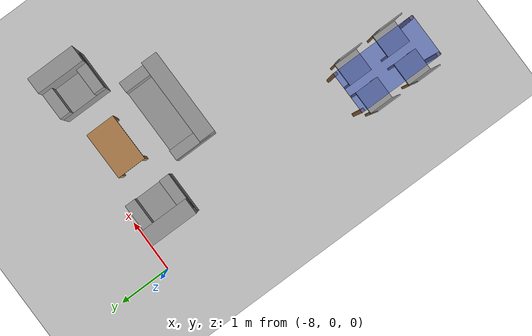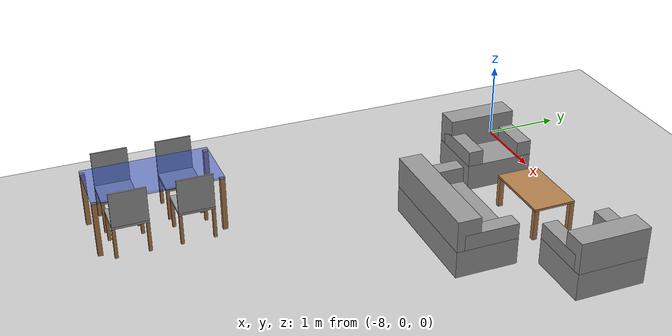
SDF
<sdf version="1.6">
 <world name="GrannyAnnie">
  <model name="ground_plane">
   <static>1</static>
   <link name="link">
    <collision name="collision">
     <geometry><plane><normal>0 0 1</normal><size>100 100</size></plane></geometry>
     <surface><friction><ode><mu>100</mu><mu2>100</mu2></ode></friction></surface>
    </collision>
    <visual name="visual">
     <cast_shadows>0</cast_shadows>
     <geometry><plane><normal>0 0 1</normal><size>100 100</size></plane></geometry>
     <material>
      <script><uri>file://media/materials/scripts/gazebo.material</uri><name>Gazebo/Grey</name></script>
     </material>
    </visual>
    <velocity_decay><linear>0</linear><angular>0</angular></velocity_decay>
   </link>
  </model>
  <model name="mesa_comedor">
   <link name="mesa_link">
    <inertial>
     <pose>0 0 0.513571 0 -0 0</pose>
     <mass>7</mass>
     <inertia>
      <ixx>1.28229</ixx>
      <ixy>0</ixy>
      <ixz>5.70179e-17</ixz>
      <iyy>3.10629</iyy>
      <iyz>0</iyz>
      <izz>3.4192</izz>
     </inertia>
    </inertial>
    <collision name="mesa_link_collision">
     <pose>0 0 0.725 0 -0 0</pose>
     <geometry><box><size>1.6 0.8 0.03</size></box></geometry>
     <surface><friction><ode><mu>100</mu><mu2>100</mu2></ode></friction></surface>
    </collision>
    <collision name="mesa_link_collision_pata_1_link">
     <pose>0.77 0.37 0.355 0 -0 0</pose>
     <geometry><box><size>0.06 0.06 0.71</size></box></geometry>
     <surface><friction><ode><mu>100</mu><mu2>100</mu2></ode></friction></surface>
     <surface><friction><ode><mu>100</mu><mu2>100</mu2></ode></friction></surface>
    </collision>
    <collision name="mesa_link_collision_pata_2_link">
     <pose>0.77 -0.37 0.355 0 -0 0</pose>
     <geometry><box><size>0.06 0.06 0.71</size></box></geometry>
     <surface><friction><ode><mu>100</mu><mu2>100</mu2></ode></friction></surface>
     <surface><friction><ode><mu>100</mu><mu2>100</mu2></ode></friction></surface>
    </collision>
    <collision name="mesa_link_collision_pata_3_link">
     <pose>-0.77 -0.37 0.355 0 -0 0</pose>
     <geometry><box><size>0.06 0.06 0.71</size></box></geometry>
     <surface><friction><ode><mu>100</mu><mu2>100</mu2></ode></friction></surface>
     <surface><friction><ode><mu>100</mu><mu2>100</mu2></ode></friction></surface>
    </collision>
    <collision name="mesa_link_collision_pata_4_link">
     <pose>-0.77 0.37 0.355 0 -0 0</pose>
     <geometry><box><size>0.06 0.06 0.71</size></box></geometry>
     <surface><friction><ode><mu>100</mu><mu2>100</mu2></ode></friction></surface>
     <surface><friction><ode><mu>100</mu><mu2>100</mu2></ode></friction></surface>
    </collision>
    <visual name="mesa_link_visual">
     <pose>0 0 0.725 0 -0 0</pose>
     <geometry><box><size>1.6 0.8 0.03</size></box></geometry>
     <material><script><name>Gazebo/BlueTransparent</name><uri>__default__</uri></script></material>
    </visual>
    <visual name="mesa_link_visual_pata_1_link">
     <pose>0.77 0.37 0.355 0 -0 0</pose>
     <geometry><box><size>0.06 0.06 0.71</size></box></geometry>
     <material><script><name>Gazebo/Wood</name><uri>__default__</uri></script></material>
    </visual>
    <visual name="mesa_link_visual_pata_2_link">
     <pose>0.77 -0.37 0.355 0 -0 0</pose>
     <geometry><box><size>0.06 0.06 0.71</size></box></geometry>
     <material><script><name>Gazebo/Wood</name><uri>__default__</uri></script></material>
    </visual>
    <visual name="mesa_link_visual_pata_3_link">
     <pose>-0.77 -0.37 0.355 0 -0 0</pose>
     <geometry><box><size>0.06 0.06 0.71</size></box></geometry>
     <material><script><name>Gazebo/Wood</name><uri>__default__</uri></script></material>
    </visual>
    <visual name="mesa_link_visual_pata_4_link">
     <pose>-0.77 0.37 0.355 0 -0 0</pose>
     <geometry><box><size>0.06 0.06 0.71</size></box></geometry>
     <material><script><name>Gazebo/Wood</name><uri>__default__</uri></script></material>
    </visual>
    <velocity_decay><linear>0</linear><angular>0</angular></velocity_decay>
    <velocity_decay><linear>0</linear><angular>0</angular></velocity_decay>
    <velocity_decay><linear>0</linear><angular>0</angular></velocity_decay>
    <velocity_decay><linear>0</linear><angular>0</angular></velocity_decay>
    <velocity_decay><linear>0</linear><angular>0</angular></velocity_decay>
    <self_collide>1</self_collide>
   </link>
   <pose>-7.4 -5 -0.00088 0 -0 1.57</pose>
   <static>0</static>
  </model>
  <model name="silla_1">
   <link name="silla_link">
    <inertial>
     <pose>0.0215 0 0.353 0 -0 0</pose>
     <mass>2</mass>
     <inertia>
      <ixx>0.674432</ixx>
      <ixy>0</ixy>
      <ixz>-0.012986</ixz>
      <iyy>0.682753</iyy>
      <iyz>0</iyz>
      <izz>0.675561</izz>
     </inertia>
    </inertial>
    <collision name="silla_link_collision">
     <pose>0 0 0.415 0 -0 0</pose>
     <geometry><box><size>0.45 0.45 0.03</size></box></geometry>
     <surface><friction><ode><mu>100</mu><mu2>100</mu2></ode></friction></surface>
    </collision>
    <collision name="silla_link_collision_pata_1_link">
     <pose>0.205 0.205 0.2 0 -0 0</pose>
     <geometry><box><size>0.04 0.04 0.4</size></box></geometry>
     <surface><friction><ode><mu>100</mu><mu2>100</mu2></ode></friction></surface>
     <surface><friction><ode><mu>100</mu><mu2>100</mu2></ode></friction></surface>
    </collision>
    <collision name="silla_link_collision_pata_2_link">
     <pose>0.205 -0.205 0.2 0 -0 0</pose>
     <geometry><box><size>0.04 0.04 0.4</size></box></geometry>
     <surface><friction><ode><mu>100</mu><mu2>100</mu2></ode></friction></surface>
     <surface><friction><ode><mu>100</mu><mu2>100</mu2></ode></friction></surface>
    </collision>
    <collision name="silla_link_collision_pata_3_link">
     <pose>-0.205 -0.205 0.2 0 -0 0</pose>
     <geometry><box><size>0.04 0.04 0.4</size></box></geometry>
     <surface><friction><ode><mu>100</mu><mu2>100</mu2></ode></friction></surface>
     <surface><friction><ode><mu>100</mu><mu2>100</mu2></ode></friction></surface>
    </collision>
    <collision name="silla_link_collision_pata_4_link">
     <pose>-0.205 0.205 0.2 0 -0 0</pose>
     <geometry><box><size>0.04 0.04 0.4</size></box></geometry>
     <surface><friction><ode><mu>100</mu><mu2>100</mu2></ode></friction></surface>
     <surface><friction><ode><mu>100</mu><mu2>100</mu2></ode></friction></surface>
    </collision>
    <collision name="silla_link_collision_respaldo_link">
     <pose>0.215 0 0.655 0 -0 0</pose>
     <geometry><box><size>0.02 0.45 0.45</size></box></geometry>
     <surface><friction><ode><mu>100</mu><mu2>100</mu2></ode></friction></surface>
     <surface><friction><ode><mu>100</mu><mu2>100</mu2></ode></friction></surface>
    </collision>
    <visual name="silla_link_visual">
     <pose>0 0 0.415 0 -0 0</pose>
     <geometry><box><size>0.45 0.45 0.03</size></box></geometry>
     <material><script><name>Gazebo/Grey</name><uri>__default__</uri></script></material>
    </visual>
    <visual name="silla_link_visual_pata_1_link">
     <pose>0.205 0.205 0.2 0 -0 0</pose>
     <geometry><box><size>0.04 0.04 0.4</size></box></geometry>
     <material><script><name>Gazebo/Wood</name><uri>__default__</uri></script></material>
    </visual>
    <visual name="silla_link_visual_pata_2_link">
     <pose>0.205 -0.205 0.2 0 -0 0</pose>
     <geometry><box><size>0.04 0.04 0.4</size></box></geometry>
     <material><script><name>Gazebo/Wood</name><uri>__default__</uri></script></material>
    </visual>
    <visual name="silla_link_visual_pata_3_link">
     <pose>-0.205 -0.205 0.2 0 -0 0</pose>
     <geometry><box><size>0.04 0.04 0.4</size></box></geometry>
     <material><script><name>Gazebo/Wood</name><uri>__default__</uri></script></material>
    </visual>
    <visual name="silla_link_visual_pata_4_link">
     <pose>-0.205 0.205 0.2 0 -0 0</pose>
     <geometry><box><size>0.04 0.04 0.4</size></box></geometry>
     <material><script><name>Gazebo/Wood</name><uri>__default__</uri></script></material>
    </visual>
    <visual name="silla_link_visual_respaldo_link">
     <pose>0.215 0 0.655 0 -0 0</pose>
     <geometry><box><size>0.02 0.45 0.45</size></box></geometry>
     <material><script><name>Gazebo/Grey</name><uri>__default__</uri></script></material>
    </visual>
    <velocity_decay><linear>0</linear><angular>0</angular></velocity_decay>
    <velocity_decay><linear>0</linear><angular>0</angular></velocity_decay>
    <velocity_decay><linear>0</linear><angular>0</angular></velocity_decay>
    <velocity_decay><linear>0</linear><angular>0</angular></velocity_decay>
    <velocity_decay><linear>0</linear><angular>0</angular></velocity_decay>
    <velocity_decay><linear>0</linear><angular>0</angular></velocity_decay>
    <self_collide>1</self_collide>
   </link>
   <pose>-7.09936 -5.39899 1e-05 -4.4e-05 -1e-06 -0.002131</pose>
   <static>0</static>
  </model>
  <model name="silla_2">
   <link name="silla_link">
    <inertial>
     <pose>0.0215 0 0.353 0 -0 0</pose>
     <mass>2</mass>
     <inertia>
      <ixx>0.674432</ixx>
      <ixy>0</ixy>
      <ixz>-0.012986</ixz>
      <iyy>0.682753</iyy>
      <iyz>0</iyz>
      <izz>0.675561</izz>
     </inertia>
    </inertial>
    <collision name="silla_link_collision">
     <pose>0 0 0.415 0 -0 0</pose>
     <geometry><box><size>0.45 0.45 0.03</size></box></geometry>
     <surface><friction><ode><mu>100</mu><mu2>100</mu2></ode></friction></surface>
    </collision>
    <collision name="silla_link_collision_pata_1_link">
     <pose>0.205 0.205 0.2 0 -0 0</pose>
     <geometry><box><size>0.04 0.04 0.4</size></box></geometry>
     <surface><friction><ode><mu>100</mu><mu2>100</mu2></ode></friction></surface>
     <surface><friction><ode><mu>100</mu><mu2>100</mu2></ode></friction></surface>
    </collision>
    <collision name="silla_link_collision_pata_2_link">
     <pose>0.205 -0.205 0.2 0 -0 0</pose>
     <geometry><box><size>0.04 0.04 0.4</size></box></geometry>
     <surface><friction><ode><mu>100</mu><mu2>100</mu2></ode></friction></surface>
     <surface><friction><ode><mu>100</mu><mu2>100</mu2></ode></friction></surface>
    </collision>
    <collision name="silla_link_collision_pata_3_link">
     <pose>-0.205 -0.205 0.2 0 -0 0</pose>
     <geometry><box><size>0.04 0.04 0.4</size></box></geometry>
     <surface><friction><ode><mu>100</mu><mu2>100</mu2></ode></friction></surface>
     <surface><friction><ode><mu>100</mu><mu2>100</mu2></ode></friction></surface>
    </collision>
    <collision name="silla_link_collision_pata_4_link">
     <pose>-0.205 0.205 0.2 0 -0 0</pose>
     <geometry><box><size>0.04 0.04 0.4</size></box></geometry>
     <surface><friction><ode><mu>100</mu><mu2>100</mu2></ode></friction></surface>
     <surface><friction><ode><mu>100</mu><mu2>100</mu2></ode></friction></surface>
    </collision>
    <collision name="silla_link_collision_respaldo_link">
     <pose>0.215 0 0.655 0 -0 0</pose>
     <geometry><box><size>0.02 0.45 0.45</size></box></geometry>
     <surface><friction><ode><mu>100</mu><mu2>100</mu2></ode></friction></surface>
     <surface><friction><ode><mu>100</mu><mu2>100</mu2></ode></friction></surface>
    </collision>
    <visual name="silla_link_visual">
     <pose>0 0 0.415 0 -0 0</pose>
     <geometry><box><size>0.45 0.45 0.03</size></box></geometry>
     <material><script><name>Gazebo/Grey</name><uri>__default__</uri></script></material>
    </visual>
    <visual name="silla_link_visual_pata_1_link">
     <pose>0.205 0.205 0.2 0 -0 0</pose>
     <geometry><box><size>0.04 0.04 0.4</size></box></geometry>
     <material><script><name>Gazebo/Wood</name><uri>__default__</uri></script></material>
    </visual>
    <visual name="silla_link_visual_pata_2_link">
     <pose>0.205 -0.205 0.2 0 -0 0</pose>
     <geometry><box><size>0.04 0.04 0.4</size></box></geometry>
     <material><script><name>Gazebo/Wood</name><uri>__default__</uri></script></material>
    </visual>
    <visual name="silla_link_visual_pata_3_link">
     <pose>-0.205 -0.205 0.2 0 -0 0</pose>
     <geometry><box><size>0.04 0.04 0.4</size></box></geometry>
     <material><script><name>Gazebo/Wood</name><uri>__default__</uri></script></material>
    </visual>
    <visual name="silla_link_visual_pata_4_link">
     <pose>-0.205 0.205 0.2 0 -0 0</pose>
     <geometry><box><size>0.04 0.04 0.4</size></box></geometry>
     <material><script><name>Gazebo/Wood</name><uri>__default__</uri></script></material>
    </visual>
    <visual name="silla_link_visual_respaldo_link">
     <pose>0.215 0 0.655 0 -0 0</pose>
     <geometry><box><size>0.02 0.45 0.45</size></box></geometry>
     <material><script><name>Gazebo/Grey</name><uri>__default__</uri></script></material>
    </visual>
    <velocity_decay><linear>0</linear><angular>0</angular></velocity_decay>
    <velocity_decay><linear>0</linear><angular>0</angular></velocity_decay>
    <velocity_decay><linear>0</linear><angular>0</angular></velocity_decay>
    <velocity_decay><linear>0</linear><angular>0</angular></velocity_decay>
    <velocity_decay><linear>0</linear><angular>0</angular></velocity_decay>
    <velocity_decay><linear>0</linear><angular>0</angular></velocity_decay>
    <self_collide>1</self_collide>
   </link>
   <pose>-7.09936 -4.59899 1e-05 -4.4e-05 -1e-06 -0.002131</pose>
   <static>0</static>
  </model>
  <model name="silla_3">
   <link name="silla_link">
    <inertial>
     <pose>0.0215 0 0.353 0 -0 0</pose>
     <mass>2</mass>
     <inertia>
      <ixx>0.674432</ixx>
      <ixy>0</ixy>
      <ixz>-0.012986</ixz>
      <iyy>0.682753</iyy>
      <iyz>0</iyz>
      <izz>0.675561</izz>
     </inertia>
    </inertial>
    <collision name="silla_link_collision">
     <pose>0 0 0.415 0 -0 0</pose>
     <geometry><box><size>0.45 0.45 0.03</size></box></geometry>
     <surface><friction><ode><mu>100</mu><mu2>100</mu2></ode></friction></surface>
    </collision>
    <collision name="silla_link_collision_pata_1_link">
     <pose>0.205 0.205 0.2 0 -0 0</pose>
     <geometry><box><size>0.04 0.04 0.4</size></box></geometry>
     <surface><friction><ode><mu>100</mu><mu2>100</mu2></ode></friction></surface>
     <surface><friction><ode><mu>100</mu><mu2>100</mu2></ode></friction></surface>
    </collision>
    <collision name="silla_link_collision_pata_2_link">
     <pose>0.205 -0.205 0.2 0 -0 0</pose>
     <geometry><box><size>0.04 0.04 0.4</size></box></geometry>
     <surface><friction><ode><mu>100</mu><mu2>100</mu2></ode></friction></surface>
     <surface><friction><ode><mu>100</mu><mu2>100</mu2></ode></friction></surface>
    </collision>
    <collision name="silla_link_collision_pata_3_link">
     <pose>-0.205 -0.205 0.2 0 -0 0</pose>
     <geometry><box><size>0.04 0.04 0.4</size></box></geometry>
     <surface><friction><ode><mu>100</mu><mu2>100</mu2></ode></friction></surface>
     <surface><friction><ode><mu>100</mu><mu2>100</mu2></ode></friction></surface>
    </collision>
    <collision name="silla_link_collision_pata_4_link">
     <pose>-0.205 0.205 0.2 0 -0 0</pose>
     <geometry><box><size>0.04 0.04 0.4</size></box></geometry>
     <surface><friction><ode><mu>100</mu><mu2>100</mu2></ode></friction></surface>
     <surface><friction><ode><mu>100</mu><mu2>100</mu2></ode></friction></surface>
    </collision>
    <collision name="silla_link_collision_respaldo_link">
     <pose>0.215 0 0.655 0 -0 0</pose>
     <geometry><box><size>0.02 0.45 0.45</size></box></geometry>
     <surface><friction><ode><mu>100</mu><mu2>100</mu2></ode></friction></surface>
     <surface><friction><ode><mu>100</mu><mu2>100</mu2></ode></friction></surface>
    </collision>
    <visual name="silla_link_visual">
     <pose>0 0 0.415 0 -0 0</pose>
     <geometry><box><size>0.45 0.45 0.03</size></box></geometry>
     <material><script><name>Gazebo/Grey</name><uri>__default__</uri></script></material>
    </visual>
    <visual name="silla_link_visual_pata_1_link">
     <pose>0.205 0.205 0.2 0 -0 0</pose>
     <geometry><box><size>0.04 0.04 0.4</size></box></geometry>
     <material><script><name>Gazebo/Wood</name><uri>__default__</uri></script></material>
    </visual>
    <visual name="silla_link_visual_pata_2_link">
     <pose>0.205 -0.205 0.2 0 -0 0</pose>
     <geometry><box><size>0.04 0.04 0.4</size></box></geometry>
     <material><script><name>Gazebo/Wood</name><uri>__default__</uri></script></material>
    </visual>
    <visual name="silla_link_visual_pata_3_link">
     <pose>-0.205 -0.205 0.2 0 -0 0</pose>
     <geometry><box><size>0.04 0.04 0.4</size></box></geometry>
     <material><script><name>Gazebo/Wood</name><uri>__default__</uri></script></material>
    </visual>
    <visual name="silla_link_visual_pata_4_link">
     <pose>-0.205 0.205 0.2 0 -0 0</pose>
     <geometry><box><size>0.04 0.04 0.4</size></box></geometry>
     <material><script><name>Gazebo/Wood</name><uri>__default__</uri></script></material>
    </visual>
    <visual name="silla_link_visual_respaldo_link">
     <pose>0.215 0 0.655 0 -0 0</pose>
     <geometry><box><size>0.02 0.45 0.45</size></box></geometry>
     <material><script><name>Gazebo/Grey</name><uri>__default__</uri></script></material>
    </visual>
    <velocity_decay><linear>0</linear><angular>0</angular></velocity_decay>
    <velocity_decay><linear>0</linear><angular>0</angular></velocity_decay>
    <velocity_decay><linear>0</linear><angular>0</angular></velocity_decay>
    <velocity_decay><linear>0</linear><angular>0</angular></velocity_decay>
    <velocity_decay><linear>0</linear><angular>0</angular></velocity_decay>
    <velocity_decay><linear>0</linear><angular>0</angular></velocity_decay>
    <self_collide>1</self_collide>
   </link>
   <pose>-7.70066 -5.401 -0.00088 0 -0 3.13803</pose>
   <static>0</static>
  </model>
  <model name="silla_4">
   <link name="silla_link">
    <inertial>
     <pose>0.0215 0 0.353 0 -0 0</pose>
     <mass>2</mass>
     <inertia>
      <ixx>0.674432</ixx>
      <ixy>0</ixy>
      <ixz>-0.012986</ixz>
      <iyy>0.682753</iyy>
      <iyz>0</iyz>
      <izz>0.675561</izz>
     </inertia>
    </inertial>
    <collision name="silla_link_collision">
     <pose>0 0 0.415 0 -0 0</pose>
     <geometry><box><size>0.45 0.45 0.03</size></box></geometry>
     <surface><friction><ode><mu>100</mu><mu2>100</mu2></ode></friction></surface>
    </collision>
    <collision name="silla_link_collision_pata_1_link">
     <pose>0.205 0.205 0.2 0 -0 0</pose>
     <geometry><box><size>0.04 0.04 0.4</size></box></geometry>
     <surface><friction><ode><mu>100</mu><mu2>100</mu2></ode></friction></surface>
     <surface><friction><ode><mu>100</mu><mu2>100</mu2></ode></friction></surface>
    </collision>
    <collision name="silla_link_collision_pata_2_link">
     <pose>0.205 -0.205 0.2 0 -0 0</pose>
     <geometry><box><size>0.04 0.04 0.4</size></box></geometry>
     <surface><friction><ode><mu>100</mu><mu2>100</mu2></ode></friction></surface>
     <surface><friction><ode><mu>100</mu><mu2>100</mu2></ode></friction></surface>
    </collision>
    <collision name="silla_link_collision_pata_3_link">
     <pose>-0.205 -0.205 0.2 0 -0 0</pose>
     <geometry><box><size>0.04 0.04 0.4</size></box></geometry>
     <surface><friction><ode><mu>100</mu><mu2>100</mu2></ode></friction></surface>
     <surface><friction><ode><mu>100</mu><mu2>100</mu2></ode></friction></surface>
    </collision>
    <collision name="silla_link_collision_pata_4_link">
     <pose>-0.205 0.205 0.2 0 -0 0</pose>
     <geometry><box><size>0.04 0.04 0.4</size></box></geometry>
     <surface><friction><ode><mu>100</mu><mu2>100</mu2></ode></friction></surface>
     <surface><friction><ode><mu>100</mu><mu2>100</mu2></ode></friction></surface>
    </collision>
    <collision name="silla_link_collision_respaldo_link">
     <pose>0.215 0 0.655 0 -0 0</pose>
     <geometry><box><size>0.02 0.45 0.45</size></box></geometry>
     <surface><friction><ode><mu>100</mu><mu2>100</mu2></ode></friction></surface>
     <surface><friction><ode><mu>100</mu><mu2>100</mu2></ode></friction></surface>
    </collision>
    <visual name="silla_link_visual">
     <pose>0 0 0.415 0 -0 0</pose>
     <geometry><box><size>0.45 0.45 0.03</size></box></geometry>
     <material><script><name>Gazebo/Grey</name><uri>__default__</uri></script></material>
    </visual>
    <visual name="silla_link_visual_pata_1_link">
     <pose>0.205 0.205 0.2 0 -0 0</pose>
     <geometry><box><size>0.04 0.04 0.4</size></box></geometry>
     <material><script><name>Gazebo/Wood</name><uri>__default__</uri></script></material>
    </visual>
    <visual name="silla_link_visual_pata_2_link">
     <pose>0.205 -0.205 0.2 0 -0 0</pose>
     <geometry><box><size>0.04 0.04 0.4</size></box></geometry>
     <material><script><name>Gazebo/Wood</name><uri>__default__</uri></script></material>
    </visual>
    <visual name="silla_link_visual_pata_3_link">
     <pose>-0.205 -0.205 0.2 0 -0 0</pose>
     <geometry><box><size>0.04 0.04 0.4</size></box></geometry>
     <material><script><name>Gazebo/Wood</name><uri>__default__</uri></script></material>
    </visual>
    <visual name="silla_link_visual_pata_4_link">
     <pose>-0.205 0.205 0.2 0 -0 0</pose>
     <geometry><box><size>0.04 0.04 0.4</size></box></geometry>
     <material><script><name>Gazebo/Wood</name><uri>__default__</uri></script></material>
    </visual>
    <visual name="silla_link_visual_respaldo_link">
     <pose>0.215 0 0.655 0 -0 0</pose>
     <geometry><box><size>0.02 0.45 0.45</size></box></geometry>
     <material><script><name>Gazebo/Grey</name><uri>__default__</uri></script></material>
    </visual>
    <velocity_decay><linear>0</linear><angular>0</angular></velocity_decay>
    <velocity_decay><linear>0</linear><angular>0</angular></velocity_decay>
    <velocity_decay><linear>0</linear><angular>0</angular></velocity_decay>
    <velocity_decay><linear>0</linear><angular>0</angular></velocity_decay>
    <velocity_decay><linear>0</linear><angular>0</angular></velocity_decay>
    <velocity_decay><linear>0</linear><angular>0</angular></velocity_decay>
    <self_collide>1</self_collide>
   </link>
   <pose>-7.70066 -4.601 -0.00088 0 -0 3.13803</pose>
   <static>0</static>
  </model>
  <model name="mesa_salon">
   <link name="mesa_link">
    <inertial>
     <pose>0 0 0.3075 0 -0 0</pose>
     <mass>4</mass>
     <inertia>
      <ixx>0.666275</ixx>
      <ixy>1.92593e-34</ixy>
      <ixz>1.70697e-17</ixz>
      <iyy>0.899025</iyy>
      <iyz>4.26742e-18</iyz>
      <izz>0.97285</izz>
     </inertia>
    </inertial>
    <collision name="mesa_link_collision">
     <pose>0 0 0.415 0 -0 0</pose>
     <geometry><box><size>0.9 0.55 0.03</size></box></geometry>
     <surface><friction><ode><mu>100</mu><mu2>100</mu2></ode></friction></surface>
    </collision>
    <collision name="mesa_link_collision_pata_1_link">
     <pose>0.42 0.245 0.2 0 -0 0</pose>
     <geometry><box><size>0.06 0.06 0.4</size></box></geometry>
     <surface><friction><ode><mu>100</mu><mu2>100</mu2></ode></friction></surface>
     <surface><friction><ode><mu>100</mu><mu2>100</mu2></ode></friction></surface>
    </collision>
    <collision name="mesa_link_collision_pata_2_link">
     <pose>0.42 -0.245 0.2 0 -0 0</pose>
     <geometry><box><size>0.06 0.06 0.4</size></box></geometry>
     <surface><friction><ode><mu>100</mu><mu2>100</mu2></ode></friction></surface>
     <surface><friction><ode><mu>100</mu><mu2>100</mu2></ode></friction></surface>
    </collision>
    <collision name="mesa_link_collision_pata_3_link">
     <pose>-0.42 -0.245 0.2 0 -0 0</pose>
     <geometry><box><size>0.06 0.06 0.4</size></box></geometry>
     <surface><friction><ode><mu>100</mu><mu2>100</mu2></ode></friction></surface>
     <surface><friction><ode><mu>100</mu><mu2>100</mu2></ode></friction></surface>
    </collision>
    <collision name="mesa_link_collision_pata_4_link">
     <pose>-0.42 0.245 0.2 0 -0 0</pose>
     <geometry><box><size>0.06 0.06 0.4</size></box></geometry>
     <surface><friction><ode><mu>100</mu><mu2>100</mu2></ode></friction></surface>
     <surface><friction><ode><mu>100</mu><mu2>100</mu2></ode></friction></surface>
    </collision>
    <visual name="mesa_link_visual">
     <pose>0 0 0.415 0 -0 0</pose>
     <geometry><box><size>0.9 0.55 0.03</size></box></geometry>
     <material><script><name>Gazebo/Wood</name><uri>__default__</uri></script></material>
    </visual>
    <visual name="mesa_link_visual_pata_1_link">
     <pose>0.42 0.245 0.2 0 -0 0</pose>
     <geometry><box><size>0.06 0.06 0.4</size></box></geometry>
     <material><script><name>Gazebo/Wood</name><uri>__default__</uri></script></material>
    </visual>
    <visual name="mesa_link_visual_pata_2_link">
     <pose>0.42 -0.245 0.2 0 -0 0</pose>
     <geometry><box><size>0.06 0.06 0.4</size></box></geometry>
     <material><script><name>Gazebo/Wood</name><uri>__default__</uri></script></material>
    </visual>
    <visual name="mesa_link_visual_pata_3_link">
     <pose>-0.42 -0.245 0.2 0 -0 0</pose>
     <geometry><box><size>0.06 0.06 0.4</size></box></geometry>
     <material><script><name>Gazebo/Wood</name><uri>__default__</uri></script></material>
    </visual>
    <visual name="mesa_link_visual_pata_4_link">
     <pose>-0.42 0.245 0.2 0 -0 0</pose>
     <geometry><box><size>0.06 0.06 0.4</size></box></geometry>
     <material><script><name>Gazebo/Wood</name><uri>__default__</uri></script></material>
    </visual>
    <velocity_decay><linear>0</linear><angular>0</angular></velocity_decay>
    <velocity_decay><linear>0</linear><angular>0</angular></velocity_decay>
    <velocity_decay><linear>0</linear><angular>0</angular></velocity_decay>
    <velocity_decay><linear>0</linear><angular>0</angular></velocity_decay>
    <velocity_decay><linear>0</linear><angular>0</angular></velocity_decay>
    <self_collide>1</self_collide>
   </link>
   <pose>-5.79825 -0.597822 -0.000382 0.000502 0.000634 0.00444</pose>
   <static>0</static>
  </model>
  <model name="sofa_x2_salon">
   <link name="sofa_link">
    <inertial>
     <pose>0 0.011539 0.257692 0 -0 0</pose>
     <mass>13</mass>
     <inertia>
      <ixx>0.7625</ixx>
      <ixy>0</ixy>
      <ixz>0</ixz>
      <iyy>1.67673</iyy>
      <iyz>-0.0463462</iyz>
      <izz>1.44577</izz>
     </inertia>
    </inertial>
    <collision name="sofa_link_collision">
     <pose>0 0 0.175 0 -0 0</pose>
     <geometry><box><size>1.6 0.8 0.35</size></box></geometry>
     <surface><friction><ode><mu>100</mu><mu2>100</mu2></ode></friction></surface>
    </collision>
    <collision name="sofa_link_collision_brazo_1_link">
     <pose>0.7 -0.05 0.45 0 -0 0</pose>
     <geometry><box><size>0.2 0.7 0.2</size></box></geometry>
     <surface><friction><ode><mu>100</mu><mu2>100</mu2></ode></friction></surface>
     <surface><friction><ode><mu>100</mu><mu2>100</mu2></ode></friction></surface>
    </collision>
    <collision name="sofa_link_collision_brazo_2_link">
     <pose>-0.7 -0.05 0.45 0 -0 0</pose>
     <geometry><box><size>0.2 0.7 0.2</size></box></geometry>
     <surface><friction><ode><mu>100</mu><mu2>100</mu2></ode></friction></surface>
     <surface><friction><ode><mu>100</mu><mu2>100</mu2></ode></friction></surface>
    </collision>
    <collision name="sofa_link_collision_respaldo_link">
     <pose>0 0.25 0.55 0 -0 0</pose>
     <geometry><box><size>1.6 0.3 0.4</size></box></geometry>
     <surface><friction><ode><mu>100</mu><mu2>100</mu2></ode></friction></surface>
     <surface><friction><ode><mu>100</mu><mu2>100</mu2></ode></friction></surface>
    </collision>
    <visual name="sofa_link_visual">
     <pose>0 0 0.175 0 -0 0</pose>
     <geometry><box><size>1.6 0.8 0.35</size></box></geometry>
     <material><script><name>Gazebo/Grey</name><uri>__default__</uri></script></material>
    </visual>
    <visual name="sofa_link_visual_brazo_1_link">
     <pose>0.7 -0.05 0.45 0 -0 0</pose>
     <geometry><box><size>0.2 0.7 0.2</size></box></geometry>
     <material><script><name>Gazebo/Grey</name><uri>__default__</uri></script></material>
    </visual>
    <visual name="sofa_link_visual_brazo_2_link">
     <pose>-0.7 -0.05 0.45 0 -0 0</pose>
     <geometry><box><size>0.2 0.7 0.2</size></box></geometry>
     <material><script><name>Gazebo/Grey</name><uri>__default__</uri></script></material>
    </visual>
    <visual name="sofa_link_visual_respaldo_link">
     <pose>0 0.25 0.55 0 -0 0</pose>
     <geometry><box><size>1.6 0.3 0.4</size></box></geometry>
     <material><script><name>Gazebo/Grey</name><uri>__default__</uri></script></material>
    </visual>
    <velocity_decay><linear>0</linear><angular>0</angular></velocity_decay>
    <velocity_decay><linear>0</linear><angular>0</angular></velocity_decay>
    <velocity_decay><linear>0</linear><angular>0</angular></velocity_decay>
    <velocity_decay><linear>0</linear><angular>0</angular></velocity_decay>
    <self_collide>1</self_collide>
   </link>
   <pose>-5.79749 -1.6899 -0.000929 0.000124 0 3.1409</pose>
   <static>0</static>
  </model>
  <model name="sofa_x1_1_salon">
   <link name="sofa_link">
    <inertial>
     <pose>0 0.01875 0.309375 0 -0 0</pose>
     <mass>8</mass>
     <inertia>
      <ixx>0.705859</ixx>
      <ixy>0</ixy>
      <ixz>0</ixz>
      <iyy>0.886172</iyy>
      <iyz>-0.0385938</iyz>
      <izz>0.709687</izz>
     </inertia>
    </inertial>
    <collision name="sofa_link_collision">
     <pose>0 0 0.175 0 -0 0</pose>
     <geometry><box><size>0.9 0.8 0.35</size></box></geometry>
     <surface><friction><ode><mu>100</mu><mu2>100</mu2></ode></friction></surface>
    </collision>
    <collision name="sofa_link_collision_brazo_1_link">
     <pose>0.35 -0.05 0.45 0 -0 0</pose>
     <geometry><box><size>0.2 0.7 0.2</size></box></geometry>
     <surface><friction><ode><mu>100</mu><mu2>100</mu2></ode></friction></surface>
     <surface><friction><ode><mu>100</mu><mu2>100</mu2></ode></friction></surface>
    </collision>
    <collision name="sofa_link_collision_brazo_2_link">
     <pose>-0.35 -0.05 0.45 0 -0 0</pose>
     <geometry><box><size>0.2 0.7 0.2</size></box></geometry>
     <surface><friction><ode><mu>100</mu><mu2>100</mu2></ode></friction></surface>
     <surface><friction><ode><mu>100</mu><mu2>100</mu2></ode></friction></surface>
    </collision>
    <collision name="sofa_link_collision_respaldo_link">
     <pose>0 0.25 0.55 0 -0 0</pose>
     <geometry><box><size>0.9 0.3 0.4</size></box></geometry>
     <surface><friction><ode><mu>100</mu><mu2>100</mu2></ode></friction></surface>
     <surface><friction><ode><mu>100</mu><mu2>100</mu2></ode></friction></surface>
    </collision>
    <visual name="sofa_link_visual">
     <pose>0 0 0.175 0 -0 0</pose>
     <geometry><box><size>0.9 0.8 0.35</size></box></geometry>
     <material><script><name>Gazebo/Grey</name><uri>__default__</uri></script></material>
    </visual>
    <visual name="sofa_link_visual_brazo_1_link">
     <pose>0.35 -0.05 0.45 0 -0 0</pose>
     <geometry><box><size>0.2 0.7 0.2</size></box></geometry>
     <material><script><name>Gazebo/Grey</name><uri>__default__</uri></script></material>
    </visual>
    <visual name="sofa_link_visual_brazo_2_link">
     <pose>-0.35 -0.05 0.45 0 -0 0</pose>
     <geometry><box><size>0.2 0.7 0.2</size></box></geometry>
     <material><script><name>Gazebo/Grey</name><uri>__default__</uri></script></material>
    </visual>
    <visual name="sofa_link_visual_respaldo_link">
     <pose>0 0.25 0.55 0 -0 0</pose>
     <geometry><box><size>0.9 0.3 0.4</size></box></geometry>
     <material><script><name>Gazebo/Grey</name><uri>__default__</uri></script></material>
    </visual>
    <velocity_decay><linear>0</linear><angular>0</angular></velocity_decay>
    <velocity_decay><linear>0</linear><angular>0</angular></velocity_decay>
    <velocity_decay><linear>0</linear><angular>0</angular></velocity_decay>
    <velocity_decay><linear>0</linear><angular>0</angular></velocity_decay>
    <self_collide>1</self_collide>
   </link>
   <pose>-4.5 -0.6 -0 -0 -0 -1.57</pose>
   <static>0</static>
  </model>
  <model name="sofa_x1_2_salon">
   <link name="sofa_link">
    <inertial>
     <pose>0 0.01875 0.309375 0 -0 0</pose>
     <mass>8</mass>
     <inertia>
      <ixx>0.705859</ixx>
      <ixy>0</ixy>
      <ixz>0</ixz>
      <iyy>0.886172</iyy>
      <iyz>-0.0385938</iyz>
      <izz>0.709687</izz>
     </inertia>
    </inertial>
    <collision name="sofa_link_collision">
     <pose>0 0 0.175 0 -0 0</pose>
     <geometry><box><size>0.9 0.8 0.35</size></box></geometry>
     <surface><friction><ode><mu>100</mu><mu2>100</mu2></ode></friction></surface>
    </collision>
    <collision name="sofa_link_collision_brazo_1_link">
     <pose>0.35 -0.05 0.45 0 -0 0</pose>
     <geometry><box><size>0.2 0.7 0.2</size></box></geometry>
     <surface><friction><ode><mu>100</mu><mu2>100</mu2></ode></friction></surface>
     <surface><friction><ode><mu>100</mu><mu2>100</mu2></ode></friction></surface>
    </collision>
    <collision name="sofa_link_collision_brazo_2_link">
     <pose>-0.35 -0.05 0.45 0 -0 0</pose>
     <geometry><box><size>0.2 0.7 0.2</size></box></geometry>
     <surface><friction><ode><mu>100</mu><mu2>100</mu2></ode></friction></surface>
     <surface><friction><ode><mu>100</mu><mu2>100</mu2></ode></friction></surface>
    </collision>
    <collision name="sofa_link_collision_respaldo_link">
     <pose>0 0.25 0.55 0 -0 0</pose>
     <geometry><box><size>0.9 0.3 0.4</size></box></geometry>
     <surface><friction><ode><mu>100</mu><mu2>100</mu2></ode></friction></surface>
     <surface><friction><ode><mu>100</mu><mu2>100</mu2></ode></friction></surface>
    </collision>
    <visual name="sofa_link_visual">
     <pose>0 0 0.175 0 -0 0</pose>
     <geometry><box><size>0.9 0.8 0.35</size></box></geometry>
     <material><script><name>Gazebo/Grey</name><uri>__default__</uri></script></material>
    </visual>
    <visual name="sofa_link_visual_brazo_1_link">
     <pose>0.35 -0.05 0.45 0 -0 0</pose>
     <geometry><box><size>0.2 0.7 0.2</size></box></geometry>
     <material><script><name>Gazebo/Grey</name><uri>__default__</uri></script></material>
    </visual>
    <visual name="sofa_link_visual_brazo_2_link">
     <pose>-0.35 -0.05 0.45 0 -0 0</pose>
     <geometry><box><size>0.2 0.7 0.2</size></box></geometry>
     <material><script><name>Gazebo/Grey</name><uri>__default__</uri></script></material>
    </visual>
    <visual name="sofa_link_visual_respaldo_link">
     <pose>0 0.25 0.55 0 -0 0</pose>
     <geometry><box><size>0.9 0.3 0.4</size></box></geometry>
     <material><script><name>Gazebo/Grey</name><uri>__default__</uri></script></material>
    </visual>
    <velocity_decay><linear>0</linear><angular>0</angular></velocity_decay>
    <velocity_decay><linear>0</linear><angular>0</angular></velocity_decay>
    <velocity_decay><linear>0</linear><angular>0</angular></velocity_decay>
    <velocity_decay><linear>0</linear><angular>0</angular></velocity_decay>
    <self_collide>1</self_collide>
   </link>
   <pose>-7.1 -0.6 -0 0 -0 1.57</pose>
   <static>0</static>
  </model>
 </world>
</sdf>
